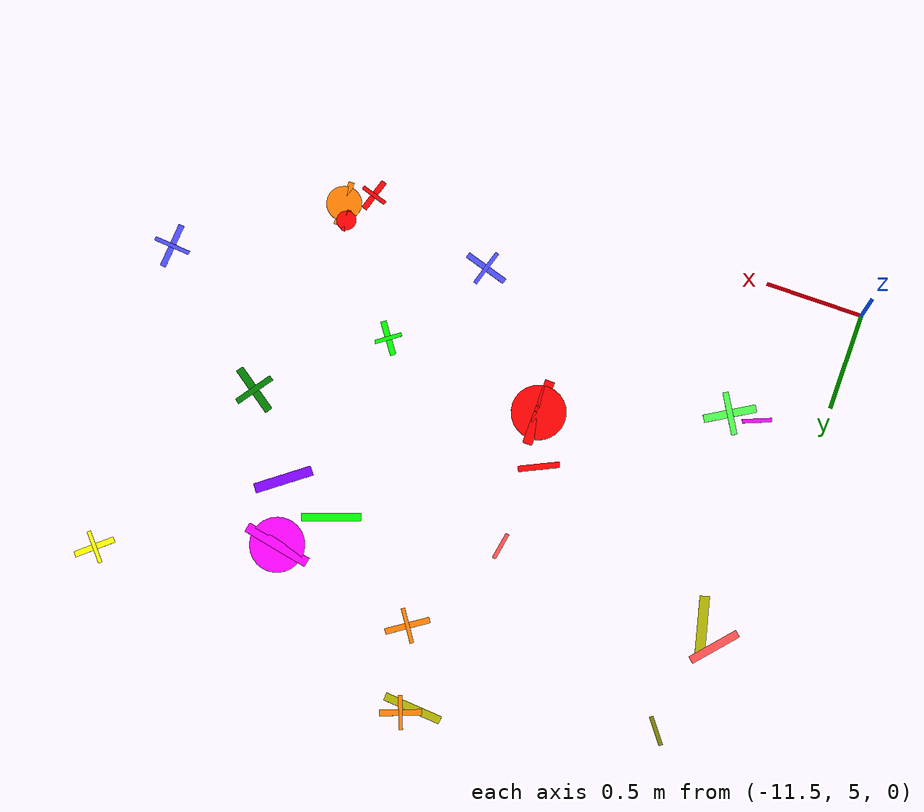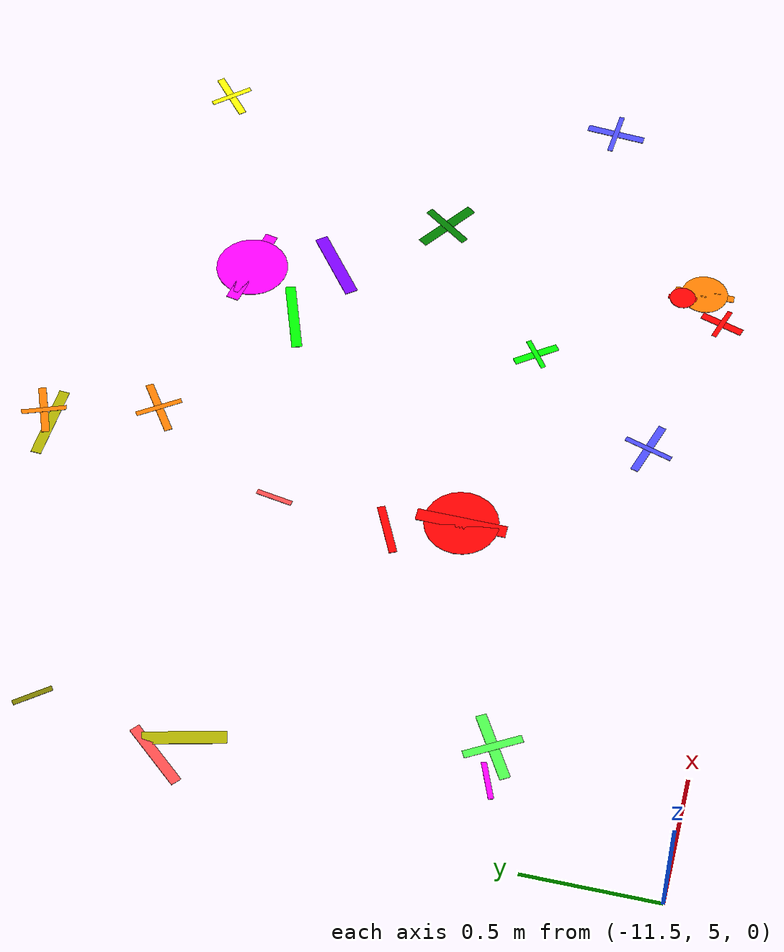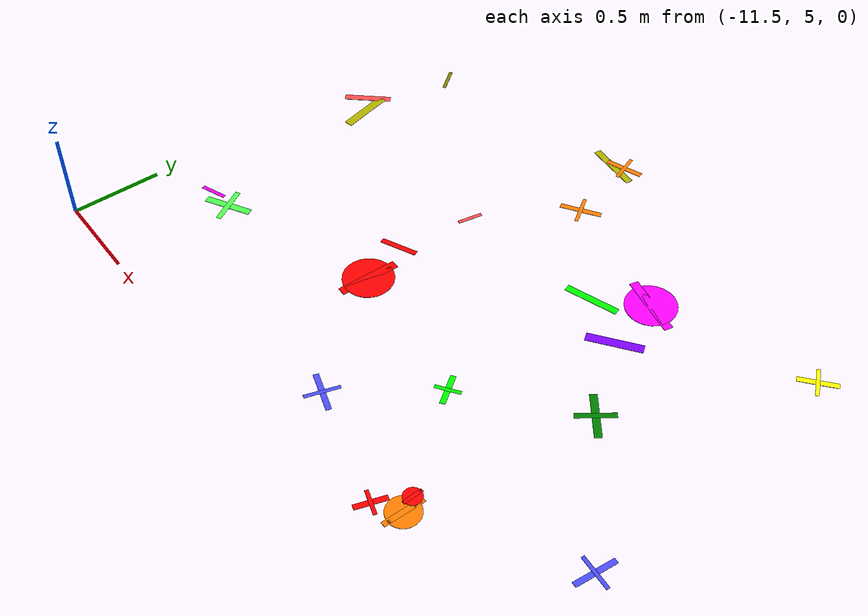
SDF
<sdf version="1.6">
 <world name="default">
  <model name="letter_J_372">
   <static>true</static>
   <pose>-11.17 5.68 0.012 0 0 0.376</pose>
   <link name="link">
    <visual name="visual">
     <geometry><box><size>0.15 0.02 0.002</size></box></geometry>
     <material>
      <ambient>1.0 0.0 1.0 1</ambient>
      <diffuse>1.0 0.0 1.0 1</diffuse>
      <specular>0.1 0.1 0.1 1</specular>
     </material>
    </visual>
   </link>
  </model>
  <model name="letter_E_373">
   <static>true</static>
   <pose>-11.03 5.69 0.009 0 0 3.669</pose>
   <link name="link">
    <visual name="visual">
     <geometry><box><size>0.27 0.04 0.002</size></box></geometry>
     <material>
      <ambient>0.3 1.0 0.3 1</ambient>
      <diffuse>0.3 1.0 0.3 1</diffuse>
      <specular>0.1 0.1 0.1 1</specular>
     </material>
    </visual>
    <visual name="visual2">
     <pose>0 0 0.001 0 0 1.57</pose>
     <geometry><box><size>0.22 0.03 0.001</size></box></geometry>
     <material><ambient>0.3 1.0 0.3 1</ambient><diffuse>0.3 1.0 0.3 1</diffuse></material>
    </visual>
   </link>
  </model>
  <model name="letter_W_374">
   <static>true</static>
   <pose>-11.24 6.75 0.012 0 0 1.807</pose>
   <link name="link">
    <visual name="visual">
     <geometry><box><size>0.30 0.05 0.002</size></box></geometry>
     <material>
      <ambient>0.7 0.7 0.0 1</ambient>
      <diffuse>0.7 0.7 0.0 1</diffuse>
      <specular>0.1 0.1 0.1 1</specular>
     </material>
    </visual>
   </link>
  </model>
  <model name="letter_K_375">
   <static>true</static>
   <pose>-11.19 7.32 0.006 0 0 2.223</pose>
   <link name="link">
    <visual name="visual">
     <geometry><box><size>0.15 0.02 0.002</size></box></geometry>
     <material>
      <ambient>0.5 0.5 0.0 1</ambient>
      <diffuse>0.5 0.5 0.0 1</diffuse>
      <specular>0.1 0.1 0.1 1</specular>
     </material>
    </visual>
   </link>
  </model>
  <model name="letter_K_376">
   <static>true</static>
   <pose>-11.33 6.83 0.012 0 0 0.845</pose>
   <link name="link">
    <visual name="visual">
     <geometry><box><size>0.27 0.04 0.002</size></box></geometry>
     <material>
      <ambient>1.0 0.3 0.3 1</ambient>
      <diffuse>1.0 0.3 0.3 1</diffuse>
      <specular>0.1 0.1 0.1 1</specular>
     </material>
    </visual>
   </link>
  </model>
  <model name="letter_E_450">
   <static>true</static>
   <pose>-9.63 5.39 0.011 0 0 5.982</pose>
   <link name="link">
    <visual name="visual">
     <geometry><box><size>0.23 0.03 0.002</size></box></geometry>
     <material>
      <ambient>0.3 0.3 1.0 1</ambient>
      <diffuse>0.3 0.3 1.0 1</diffuse>
      <specular>0.1 0.1 0.1 1</specular>
     </material>
    </visual>
    <visual name="visual2">
     <pose>0 0 0.001 0 0 1.57</pose>
     <geometry><box><size>0.19 0.02 0.001</size></box></geometry>
     <material><ambient>0.3 0.3 1.0 1</ambient><diffuse>0.3 0.3 1.0 1</diffuse></material>
    </visual>
   </link>
  </model>
  <model name="letter_Q_451">
   <static>true</static>
   <pose>-10.12 6.00 0.010 0 0 1.554</pose>
   <link name="link">
    <visual name="visual">
     <geometry><box><size>0.34 0.05 0.002</size></box></geometry>
     <material>
      <ambient>1.0 0.0 0.0 1</ambient>
      <diffuse>1.0 0.0 0.0 1</diffuse>
      <specular>0.1 0.1 0.1 1</specular>
     </material>
    </visual>
    <visual name="visual2">
     <geometry><cylinder><radius>0.14</radius><length>0.002</length></cylinder></geometry>
     <material><ambient>1.0 0.0 0.0 1</ambient><diffuse>1.0 0.0 0.0 1</diffuse></material>
    </visual>
   </link>
  </model>
  <model name="letter_X_452">
   <static>true</static>
   <pose>-10.21 6.26 0.010 0 0 3.580</pose>
   <link name="link">
    <visual name="visual">
     <geometry><box><size>0.21 0.03 0.002</size></box></geometry>
     <material>
      <ambient>1.0 0.0 0.0 1</ambient>
      <diffuse>1.0 0.0 0.0 1</diffuse>
      <specular>0.1 0.1 0.1 1</specular>
     </material>
    </visual>
   </link>
  </model>
  <model name="letter_X_453">
   <static>true</static>
   <pose>-10.16 6.70 0.006 0 0 1.390</pose>
   <link name="link">
    <visual name="visual">
     <geometry><box><size>0.14 0.02 0.002</size></box></geometry>
     <material>
      <ambient>1.0 0.3 0.3 1</ambient>
      <diffuse>1.0 0.3 0.3 1</diffuse>
      <specular>0.1 0.1 0.1 1</specular>
     </material>
    </visual>
   </link>
  </model>
  <model name="letter_A_454">
   <static>true</static>
   <pose>-9.85 7.23 0.003 0 0 0.588</pose>
   <link name="link">
    <visual name="visual">
     <geometry><box><size>0.23 0.03 0.002</size></box></geometry>
     <material>
      <ambient>1.0 0.5 0.0 1</ambient>
      <diffuse>1.0 0.5 0.0 1</diffuse>
      <specular>0.1 0.1 0.1 1</specular>
     </material>
    </visual>
    <visual name="visual2">
     <pose>0 0 0.001 0 0 1.57</pose>
     <geometry><box><size>0.18 0.02 0.001</size></box></geometry>
     <material><ambient>1.0 0.5 0.0 1</ambient><diffuse>1.0 0.5 0.0 1</diffuse></material>
    </visual>
   </link>
  </model>
  <model name="letter_K_455">
   <static>true</static>
   <pose>-10.01 7.61 0.003 0 0 3.063</pose>
   <link name="link">
    <visual name="visual">
     <geometry><box><size>0.30 0.04 0.002</size></box></geometry>
     <material>
      <ambient>0.7 0.7 0.0 1</ambient>
      <diffuse>0.7 0.7 0.0 1</diffuse>
      <specular>0.1 0.1 0.1 1</specular>
     </material>
    </visual>
   </link>
  </model>
  <model name="letter_A_457">
   <static>true</static>
   <pose>-9.96 7.65 0.004 0 0 3.494</pose>
   <link name="link">
    <visual name="visual">
     <geometry><box><size>0.21 0.03 0.002</size></box></geometry>
     <material>
      <ambient>1.0 0.5 0.0 1</ambient>
      <diffuse>1.0 0.5 0.0 1</diffuse>
      <specular>0.1 0.1 0.1 1</specular>
     </material>
    </visual>
    <visual name="visual2">
     <pose>0 0 0.001 0 0 1.57</pose>
     <geometry><box><size>0.17 0.02 0.001</size></box></geometry>
     <material><ambient>1.0 0.5 0.0 1</ambient><diffuse>1.0 0.5 0.0 1</diffuse></material>
    </visual>
   </link>
  </model>
  <model name="letter_G_528">
   <static>true</static>
   <pose>-8.84 5.31 0.006 0 0 1.570</pose>
   <link name="link">
    <visual name="visual">
     <geometry><box><size>0.23 0.03 0.002</size></box></geometry>
     <material>
      <ambient>1.0 0.5 0.0 1</ambient>
      <diffuse>1.0 0.5 0.0 1</diffuse>
      <specular>0.1 0.1 0.1 1</specular>
     </material>
    </visual>
    <visual name="visual2">
     <geometry><cylinder><radius>0.09</radius><length>0.002</length></cylinder></geometry>
     <material><ambient>1.0 0.5 0.0 1</ambient><diffuse>1.0 0.5 0.0 1</diffuse></material>
    </visual>
   </link>
  </model>
  <model name="letter_O_529">
   <static>true</static>
   <pose>-8.88 5.39 0.011 0 0 1.613</pose>
   <link name="link">
    <visual name="visual">
     <geometry><box><size>0.11 0.02 0.002</size></box></geometry>
     <material>
      <ambient>1.0 0.0 0.0 1</ambient>
      <diffuse>1.0 0.0 0.0 1</diffuse>
      <specular>0.1 0.1 0.1 1</specular>
     </material>
    </visual>
    <visual name="visual2">
     <geometry><cylinder><radius>0.05</radius><length>0.002</length></cylinder></geometry>
     <material><ambient>1.0 0.0 0.0 1</ambient><diffuse>1.0 0.0 0.0 1</diffuse></material>
    </visual>
   </link>
  </model>
  <model name="letter_I_530">
   <static>true</static>
   <pose>-8.97 5.22 0.005 0 0 4.407</pose>
   <link name="link">
    <visual name="visual">
     <geometry><box><size>0.17 0.03 0.002</size></box></geometry>
     <material>
      <ambient>1.0 0.0 0.0 1</ambient>
      <diffuse>1.0 0.0 0.0 1</diffuse>
      <specular>0.1 0.1 0.1 1</specular>
     </material>
    </visual>
    <visual name="visual2">
     <pose>0 0 0.001 0 0 1.57</pose>
     <geometry><box><size>0.14 0.02 0.001</size></box></geometry>
     <material><ambient>1.0 0.0 0.0 1</ambient><diffuse>1.0 0.0 0.0 1</diffuse></material>
    </visual>
   </link>
  </model>
  <model name="letter_T_531">
   <static>true</static>
   <pose>-8.73 6.36 0.013 0 0 5.659</pose>
   <link name="link">
    <visual name="visual">
     <geometry><box><size>0.26 0.04 0.002</size></box></geometry>
     <material>
      <ambient>0.0 0.5 0.0 1</ambient>
      <diffuse>0.0 0.5 0.0 1</diffuse>
      <specular>0.1 0.1 0.1 1</specular>
     </material>
    </visual>
    <visual name="visual2">
     <pose>0 0 0.001 0 0 1.57</pose>
     <geometry><box><size>0.21 0.03 0.001</size></box></geometry>
     <material><ambient>0.0 0.5 0.0 1</ambient><diffuse>0.0 0.5 0.0 1</diffuse></material>
    </visual>
   </link>
  </model>
  <model name="letter_A_532">
   <static>true</static>
   <pose>-9.28 5.89 0.007 0 0 5.333</pose>
   <link name="link">
    <visual name="visual">
     <geometry><box><size>0.18 0.03 0.002</size></box></geometry>
     <material>
      <ambient>0.0 1.0 0.0 1</ambient>
      <diffuse>0.0 1.0 0.0 1</diffuse>
      <specular>0.1 0.1 0.1 1</specular>
     </material>
    </visual>
    <visual name="visual2">
     <pose>0 0 0.001 0 0 1.57</pose>
     <geometry><box><size>0.14 0.02 0.001</size></box></geometry>
     <material><ambient>0.0 1.0 0.0 1</ambient><diffuse>0.0 1.0 0.0 1</diffuse></material>
    </visual>
   </link>
  </model>
  <model name="letter_V_533">
   <static>true</static>
   <pose>-9.02 6.74 0.007 0 0 0.642</pose>
   <link name="link">
    <visual name="visual">
     <geometry><box><size>0.30 0.05 0.002</size></box></geometry>
     <material>
      <ambient>0.5 0.0 1.0 1</ambient>
      <diffuse>0.5 0.0 1.0 1</diffuse>
      <specular>0.1 0.1 0.1 1</specular>
     </material>
    </visual>
   </link>
  </model>
  <model name="letter_G_534">
   <static>true</static>
   <pose>-9.10 7.06 0.003 0 0 2.937</pose>
   <link name="link">
    <visual name="visual">
     <geometry><box><size>0.35 0.05 0.002</size></box></geometry>
     <material>
      <ambient>1.0 0.0 1.0 1</ambient>
      <diffuse>1.0 0.0 1.0 1</diffuse>
      <specular>0.1 0.1 0.1 1</specular>
     </material>
    </visual>
    <visual name="visual2">
     <geometry><cylinder><radius>0.14</radius><length>0.002</length></cylinder></geometry>
     <material><ambient>1.0 0.0 1.0 1</ambient><diffuse>1.0 0.0 1.0 1</diffuse></material>
    </visual>
   </link>
  </model>
  <model name="letter_K_535">
   <static>true</static>
   <pose>-9.31 6.84 0.007 0 0 3.472</pose>
   <link name="link">
    <visual name="visual">
     <geometry><box><size>0.30 0.04 0.002</size></box></geometry>
     <material>
      <ambient>0.0 1.0 0.0 1</ambient>
      <diffuse>0.0 1.0 0.0 1</diffuse>
      <specular>0.1 0.1 0.1 1</specular>
     </material>
    </visual>
   </link>
  </model>
  <model name="letter_H_612">
   <static>true</static>
   <pose>-8.09 5.80 0.005 0 0 1.489</pose>
   <link name="link">
    <visual name="visual">
     <geometry><box><size>0.23 0.03 0.002</size></box></geometry>
     <material>
      <ambient>0.3 0.3 1.0 1</ambient>
      <diffuse>0.3 0.3 1.0 1</diffuse>
      <specular>0.1 0.1 0.1 1</specular>
     </material>
    </visual>
    <visual name="visual2">
     <pose>0 0 0.001 0 0 1.57</pose>
     <geometry><box><size>0.19 0.02 0.001</size></box></geometry>
     <material><ambient>0.3 0.3 1.0 1</ambient><diffuse>0.3 0.3 1.0 1</diffuse></material>
    </visual>
   </link>
  </model>
  <model name="letter_A_614">
   <static>true</static>
   <pose>-8.24 7.37 0.005 0 0 3.842</pose>
   <link name="link">
    <visual name="visual">
     <geometry><box><size>0.21 0.03 0.002</size></box></geometry>
     <material>
      <ambient>1.0 1.0 0.0 1</ambient>
      <diffuse>1.0 1.0 0.0 1</diffuse>
      <specular>0.1 0.1 0.1 1</specular>
     </material>
    </visual>
    <visual name="visual2">
     <pose>0 0 0.001 0 0 1.57</pose>
     <geometry><box><size>0.17 0.02 0.001</size></box></geometry>
     <material><ambient>1.0 1.0 0.0 1</ambient><diffuse>1.0 1.0 0.0 1</diffuse></material>
    </visual>
   </link>
  </model>
 </world>
</sdf>
